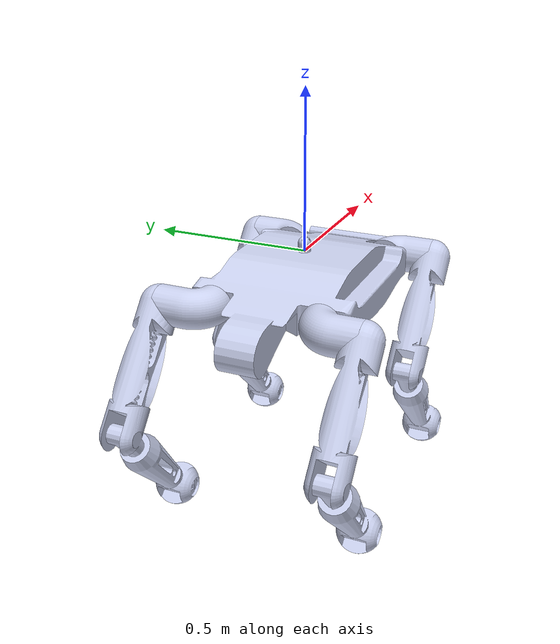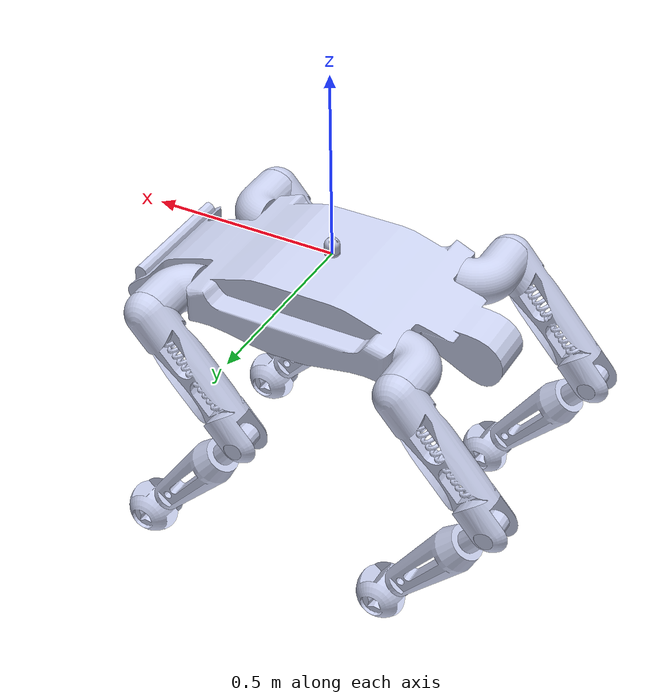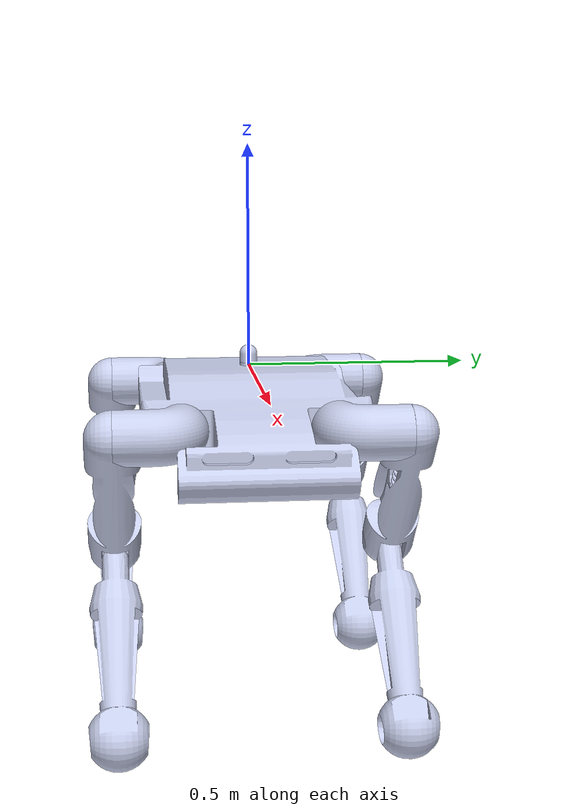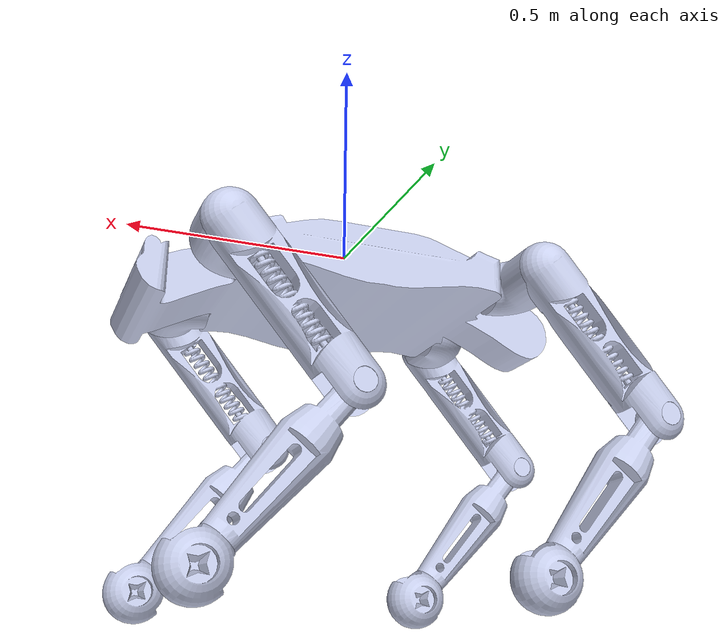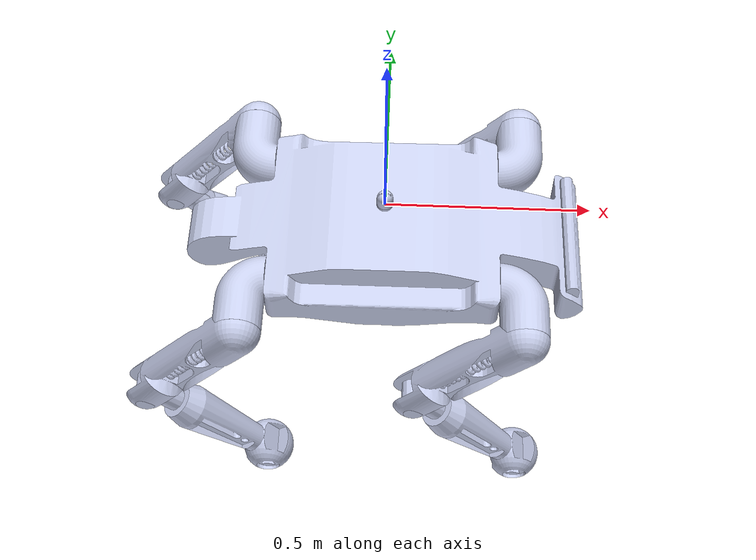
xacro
<?xml version="1.0" ?>
<robot
  name="bruno" xmlns:xacro="http://ros.org/wiki/xacro">
  <link name="dummy_link"></link>
  <link
    name="base_link" >
    <inertial>
      <origin
        xyz="0.0226398495790573 -3.89308433540458E-05 -0.0917853865936327"
        rpy="0 0 0" />
      <mass
        value="40.9811213814977" />
      <inertia
        ixx="0.705590024772154"
        ixy="-0.000426844603876142"
        ixz="0.0538798871665836"
        iyy="2.10623867387607"
        iyz="8.22509666239292E-05"
        izz="2.66085772664499" />
    </inertial>
    <visual>
      <origin
        xyz="0 0 0"
        rpy="0 0 0" />
      <geometry>
        <mesh
          filename="package://bruno/meshes/base_link.STL" />
      </geometry>
      <material
        name="">
        <color
          rgba="0.792156862745098 0.819607843137255 0.933333333333333 1" />
      </material>
    </visual>
    <collision>
      <origin
        xyz="0 0 0"
        rpy="0 0 0" />
      <geometry>
        <mesh
          filename="package://bruno/meshes/base_link.STL" />
      </geometry>
    </collision>
  </link>
  <joint name="dummy_joint" type="fixed">
    <origin rpy="0 0 0" xyz="0 0 0" />
    <parent link="dummy_link"/>
    <child link="base_link"/>
	</joint>
  <link
    name="fr_thigh_link">
    <inertial>
      <origin
        xyz="-0.0632805867054035 2.1285884999056E-09 0.0305615244081003"
        rpy="0 0 0" />
      <mass
        value="2.03276391085227" />
      <inertia
        ixx="0.00362430847918608"
        ixy="-6.93144774285455E-10"
        ixz="0.000758555151467763"
        iyy="0.00831656981525165"
        iyz="2.36222199008423E-10"
        izz="0.00835118856419136" />
    </inertial>
    <visual>
      <origin
        xyz="0 0 0"
        rpy="0 0 0" />
      <geometry>
        <mesh
          filename="package://bruno/meshes/fr_thigh_link.STL" />
      </geometry>
      <material
        name="">
        <color
          rgba="0.792156862745098 0.819607843137255 0.933333333333333 1" />
      </material>
    </visual>
    <collision>
      <origin
        xyz="0 0 0"
        rpy="0 0 0" />
      <geometry>
        <mesh
          filename="package://bruno/meshes/fr_thigh_link.STL" />
      </geometry>
    </collision>
  </link>
  <joint
    name="fr_thigh_joint"
    type="revolute">
    <origin
      xyz="0.308523286801734 -0.170000173902694 -0.0943774201689784"
      rpy="1.5707963267949 0 1.5707963267949" />
    <parent
      link="base_link" />
    <child
      link="fr_thigh_link" />
    <axis
      xyz="0 0 1" />
    <limit
      lower="0"
      upper="0"
      effort="0"
      velocity="0" />
  </joint>
  <link
    name="fr_leg_link">
    <inertial>
      <origin
        xyz="0.12019790111426 -0.143259479284328 0.0203781049178077"
        rpy="0 0 0" />
      <mass
        value="2.21745458605018" />
      <inertia
        ixx="0.0266716191184848"
        ixy="0.0187884251532103"
        ixz="-0.00116911776317338"
        iyy="0.0200463346888596"
        iyz="0.00139351727422659"
        izz="0.0434443595227279" />
    </inertial>
    <visual>
      <origin
        xyz="0 0 0"
        rpy="0 0 0" />
      <geometry>
        <mesh
          filename="package://bruno/meshes/fr_leg_link.STL" />
      </geometry>
      <material
        name="">
        <color
          rgba="0.792156862745098 0.819607843137255 0.933333333333333 1" />
      </material>
    </visual>
    <collision>
      <origin
        xyz="0 0 0"
        rpy="0 0 0" />
      <geometry>
        <mesh
          filename="package://bruno/meshes/fr_leg_link.STL" />
      </geometry>
    </collision>
  </link>
  <joint
    name="fr_leg_joint"
    type="revolute">
    <origin
      xyz="-0.170183232756006 0 0.0354382464541242"
      rpy="0 1.5707963267949 0" />
    <parent
      link="fr_thigh_link" />
    <child
      link="fr_leg_link" />
    <axis
      xyz="0 0 -1" />
    <limit
      lower="0"
      upper="0"
      effort="0"
      velocity="0" />
  </joint>
  <link
    name="fr_shin_link">
    <inertial>
      <origin
        xyz="0.179968891055547 0.215776713253008 0.000215390278360372"
        rpy="0 0 0" />
      <mass
        value="3.17121221400824" />
      <inertia
        ixx="0.0519451453620737"
        ixy="-0.0399304170181899"
        ixz="-8.01801154788949E-05"
        iyy="0.0379833163092041"
        iyz="-9.46092673541023E-05"
        izz="0.0858857153551078" />
    </inertial>
    <visual>
      <origin
        xyz="0 0 0"
        rpy="0 0 0" />
      <geometry>
        <mesh
          filename="package://bruno/meshes/fr_shin_link.STL" />
      </geometry>
      <material
        name="">
        <color
          rgba="0.792156862745098 0.819607843137255 0.933333333333333 1" />
      </material>
    </visual>
    <collision>
      <origin
        xyz="0 0 0"
        rpy="0 0 0" />
      <geometry>
        <mesh
          filename="package://bruno/meshes/fr_shin_link.STL" />
      </geometry>
    </collision>
  </link>
  <joint
    name="fr_shin_joint"
    type="revolute">
    <origin
      xyz="0.264190523301229 -0.297986287064543 0.0249999734100426"
      rpy="0 0 3.14159265358979" />
    <parent
      link="fr_leg_link" />
    <child
      link="fr_shin_link" />
    <axis
      xyz="0 0 -1" />
    <limit
      lower="0"
      upper="0"
      effort="0"
      velocity="0" />
  </joint>
  <link
    name="fl_thigh_link">
    <inertial>
      <origin
        xyz="0.0632805867054036 -2.12868082882789E-09 0.0305615244081003"
        rpy="0 0 0" />
      <mass
        value="2.03276391085227" />
      <inertia
        ixx="0.00362430847918608"
        ixy="-6.93137931212592E-10"
        ixz="-0.000758555151467763"
        iyy="0.00831656981525165"
        iyz="-2.36221092593191E-10"
        izz="0.00835118856419137" />
    </inertial>
    <visual>
      <origin
        xyz="0 0 0"
        rpy="0 0 0" />
      <geometry>
        <mesh
          filename="package://bruno/meshes/fl_thigh_link.STL" />
      </geometry>
      <material
        name="">
        <color
          rgba="0.792156862745098 0.819607843137255 0.933333333333333 1" />
      </material>
    </visual>
    <collision>
      <origin
        xyz="0 0 0"
        rpy="0 0 0" />
      <geometry>
        <mesh
          filename="package://bruno/meshes/fl_thigh_link.STL" />
      </geometry>
    </collision>
  </link>
  <joint
    name="fl_thigh_joint"
    type="revolute">
    <origin
      xyz="0.308523286801734 0.170000173902694 -0.0943774201689784"
      rpy="1.5707963267949 0 1.5707963267949" />
    <parent
      link="base_link" />
    <child
      link="fl_thigh_link" />
    <axis
      xyz="0 0 1" />
    <limit
      lower="0"
      upper="0"
      effort="0"
      velocity="0" />
  </joint>
  <link
    name="fl_leg_link">
    <inertial>
      <origin
        xyz="0.120210884605648 0.143248557446126 0.0203781358138403"
        rpy="0 0 0" />
      <mass
        value="2.21746271008323" />
      <inertia
        ixx="0.0266721257111891"
        ixy="-0.0187883416352741"
        ixz="-0.00116937614015478"
        iyy="0.0200458538368986"
        iyz="-0.0013933496117703"
        izz="0.0434443467625671" />
    </inertial>
    <visual>
      <origin
        xyz="0 0 0"
        rpy="0 0 0" />
      <geometry>
        <mesh
          filename="package://bruno/meshes/fl_leg_link.STL" />
      </geometry>
      <material
        name="">
        <color
          rgba="0.792156862745098 0.819607843137255 0.933333333333333 1" />
      </material>
    </visual>
    <collision>
      <origin
        xyz="0 0 0"
        rpy="0 0 0" />
      <geometry>
        <mesh
          filename="package://bruno/meshes/fl_leg_link.STL" />
      </geometry>
    </collision>
  </link>
  <joint
    name="fl_leg_joint"
    type="revolute">
    <origin
      xyz="0.170183232756006 0 0.0354382464541242"
      rpy="3.14159265358979 1.5707963267949 0" />
    <parent
      link="fl_thigh_link" />
    <child
      link="fl_leg_link" />
    <axis
      xyz="0 0 -1" />
    <limit
      lower="0"
      upper="0"
      effort="0"
      velocity="0" />
  </joint>
  <link
    name="fl_shin_link">
    <inertial>
      <origin
        xyz="0.179968891055547 -0.215776713253008 -0.000215390278360372"
        rpy="0 0 0" />
      <mass
        value="3.17121221400824" />
      <inertia
        ixx="0.0519451453620737"
        ixy="0.0399304170181898"
        ixz="8.01801154788981E-05"
        iyy="0.0379833163092041"
        iyz="-9.46092673541049E-05"
        izz="0.0858857153551077" />
    </inertial>
    <visual>
      <origin
        xyz="0 0 0"
        rpy="0 0 0" />
      <geometry>
        <mesh
          filename="package://bruno/meshes/fl_shin_link.STL" />
      </geometry>
      <material
        name="">
        <color
          rgba="0.792156862745098 0.819607843137255 0.933333333333333 1" />
      </material>
    </visual>
    <collision>
      <origin
        xyz="0 0 0"
        rpy="0 0 0" />
      <geometry>
        <mesh
          filename="package://bruno/meshes/fl_shin_link.STL" />
      </geometry>
    </collision>
  </link>
  <joint
    name="fl_shin_joint"
    type="revolute">
    <origin
      xyz="0.264190523301229 0.297986287064544 0.0250000265899572"
      rpy="0 0 3.14159265358979" />
    <parent
      link="fl_leg_link" />
    <child
      link="fl_shin_link" />
    <axis
      xyz="0 0 1" />
    <limit
      lower="0"
      upper="0"
      effort="0"
      velocity="0" />
  </joint>
  <link
    name="br_thigh_link">
    <inertial>
      <origin
        xyz="-0.0632805867054036 2.12858870807242E-09 0.0305615244081001"
        rpy="0 0 0" />
      <mass
        value="2.03276391085227" />
      <inertia
        ixx="0.00362430847918608"
        ixy="-6.93144759042335E-10"
        ixz="0.000758555151467761"
        iyy="0.00831656981525165"
        iyz="2.36222195879922E-10"
        izz="0.00835118856419136" />
    </inertial>
    <visual>
      <origin
        xyz="0 0 0"
        rpy="0 0 0" />
      <geometry>
        <mesh
          filename="package://bruno/meshes/br_thigh_link.STL" />
      </geometry>
      <material
        name="">
        <color
          rgba="0.792156862745098 0.819607843137255 0.933333333333333 1" />
      </material>
    </visual>
    <collision>
      <origin
        xyz="0 0 0"
        rpy="0 0 0" />
      <geometry>
        <mesh
          filename="package://bruno/meshes/br_thigh_link.STL" />
      </geometry>
    </collision>
  </link>
  <joint
    name="br_thigh_joint"
    type="revolute">
    <origin
      xyz="-0.308523286801734 -0.170000173902694 -0.0943774201689784"
      rpy="-1.5707963267949 0 1.5707963267949" />
    <parent
      link="base_link" />
    <child
      link="br_thigh_link" />
    <axis
      xyz="0 0 1" />
    <limit
      lower="0"
      upper="0"
      effort="0"
      velocity="0" />
  </joint>
  <link
    name="br_leg_link">
    <inertial>
      <origin
        xyz="-0.120197901114102 0.143259479284322 0.0203781049177207"
        rpy="0 0 0" />
      <mass
        value="2.21745458603243" />
      <inertia
        ixx="0.0266716191184828"
        ixy="0.0187884251532099"
        ixz="0.00116911776316971"
        iyy="0.020046334688851"
        iyz="-0.00139351727422628"
        izz="0.0434443595227212" />
    </inertial>
    <visual>
      <origin
        xyz="0 0 0"
        rpy="0 0 0" />
      <geometry>
        <mesh
          filename="package://bruno/meshes/br_leg_link.STL" />
      </geometry>
      <material
        name="">
        <color
          rgba="0.792156862745098 0.819607843137255 0.933333333333333 1" />
      </material>
    </visual>
    <collision>
      <origin
        xyz="0 0 0"
        rpy="0 0 0" />
      <geometry>
        <mesh
          filename="package://bruno/meshes/br_leg_link.STL" />
      </geometry>
    </collision>
  </link>
  <joint
    name="br_leg_joint"
    type="revolute">
    <origin
      xyz="-0.170183232756006 0 0.0354382464541242"
      rpy="0 1.5707963267949 0" />
    <parent
      link="br_thigh_link" />
    <child
      link="br_leg_link" />
    <axis
      xyz="0 0 -1" />
    <limit
      lower="0"
      upper="0"
      effort="0"
      velocity="0" />
  </joint>
  <link
    name="br_shin_link">
    <inertial>
      <origin
        xyz="0.179968891055545 0.215776713253009 0.000215390278360483"
        rpy="0 0 0" />
      <mass
        value="3.17121221400824" />
      <inertia
        ixx="0.0519451453620743"
        ixy="-0.0399304170181898"
        ixz="-8.01801154789139E-05"
        iyy="0.0379833163092035"
        iyz="-9.46092673541252E-05"
        izz="0.0858857153551078" />
    </inertial>
    <visual>
      <origin
        xyz="0 0 0"
        rpy="0 0 0" />
      <geometry>
        <mesh
          filename="package://bruno/meshes/br_shin_link.STL" />
      </geometry>
      <material
        name="">
        <color
          rgba="0.792156862745098 0.819607843137255 0.933333333333333 1" />
      </material>
    </visual>
    <collision>
      <origin
        xyz="0 0 0"
        rpy="0 0 0" />
      <geometry>
        <mesh
          filename="package://bruno/meshes/br_shin_link.STL" />
      </geometry>
    </collision>
  </link>
  <joint
    name="br_shin_joint"
    type="revolute">
    <origin
      xyz="-0.264190523301232 0.297986287064542 0.0249999734100428"
      rpy="0 0 0" />
    <parent
      link="br_leg_link" />
    <child
      link="br_shin_link" />
    <axis
      xyz="0 0 -1" />
    <limit
      lower="0"
      upper="0"
      effort="0"
      velocity="0" />
  </joint>
  <link
    name="bl_thigh_link">
    <inertial>
      <origin
        xyz="0.0632805867054036 -2.12868118965037E-09 0.0305615244081003"
        rpy="0 0 0" />
      <mass
        value="2.03276391085227" />
      <inertia
        ixx="0.00362430847918608"
        ixy="-6.93137903500395E-10"
        ixz="-0.000758555151467762"
        iyy="0.00831656981525164"
        iyz="-2.36221087771152E-10"
        izz="0.00835118856419136" />
    </inertial>
    <visual>
      <origin
        xyz="0 0 0"
        rpy="0 0 0" />
      <geometry>
        <mesh
          filename="package://bruno/meshes/bl_thigh_link.STL" />
      </geometry>
      <material
        name="">
        <color
          rgba="0.792156862745098 0.819607843137255 0.933333333333333 1" />
      </material>
    </visual>
    <collision>
      <origin
        xyz="0 0 0"
        rpy="0 0 0" />
      <geometry>
        <mesh
          filename="package://bruno/meshes/bl_thigh_link.STL" />
      </geometry>
    </collision>
  </link>
  <joint
    name="bl_thigh_joint"
    type="revolute">
    <origin
      xyz="-0.308523286801734 0.170000173902694 -0.0943774201689784"
      rpy="-1.5707963267949 0 1.5707963267949" />
    <parent
      link="base_link" />
    <child
      link="bl_thigh_link" />
    <axis
      xyz="0 0 1" />
    <limit
      lower="0"
      upper="0"
      effort="0"
      velocity="0" />
  </joint>
  <link
    name="bl_leg_link">
    <inertial>
      <origin
        xyz="-0.120210884605528 -0.143248557446073 0.0203781358136048"
        rpy="0 0 0" />
      <mass
        value="2.21746271005845" />
      <inertia
        ixx="0.0266721257111783"
        ixy="-0.0187883416352729"
        ixz="0.00116937614014934"
        iyy="0.020045853836886"
        iyz="0.00139334961176758"
        izz="0.0434443467625641" />
    </inertial>
    <visual>
      <origin
        xyz="0 0 0"
        rpy="0 0 0" />
      <geometry>
        <mesh
          filename="package://bruno/meshes/bl_leg_link.STL" />
      </geometry>
      <material
        name="">
        <color
          rgba="0.792156862745098 0.819607843137255 0.933333333333333 1" />
      </material>
    </visual>
    <collision>
      <origin
        xyz="0 0 0"
        rpy="0 0 0" />
      <geometry>
        <mesh
          filename="package://bruno/meshes/bl_leg_link.STL" />
      </geometry>
    </collision>
  </link>
  <joint
    name="bl_leg_joint"
    type="revolute">
    <origin
      xyz="0.170183232756006 0 0.0354382464541243"
      rpy="3.14159265358979 1.5707963267949 0" />
    <parent
      link="bl_thigh_link" />
    <child
      link="bl_leg_link" />
    <axis
      xyz="0 0 -1" />
    <limit
      lower="0"
      upper="0"
      effort="0"
      velocity="0" />
  </joint>
  <link
    name="bl_shin_link">
    <inertial>
      <origin
        xyz="0.179968891055545 -0.215776713253009 -0.0002153902783604"
        rpy="0 0 0" />
      <mass
        value="3.17121221400823" />
      <inertia
        ixx="0.0519451453620743"
        ixy="0.0399304170181898"
        ixz="8.01801154789103E-05"
        iyy="0.0379833163092035"
        iyz="-9.46092673541166E-05"
        izz="0.0858857153551078" />
    </inertial>
    <visual>
      <origin
        xyz="0 0 0"
        rpy="0 0 0" />
      <geometry>
        <mesh
          filename="package://bruno/meshes/bl_shin_link.STL" />
      </geometry>
      <material
        name="">
        <color
          rgba="0.792156862745098 0.819607843137255 0.933333333333333 1" />
      </material>
    </visual>
    <collision>
      <origin
        xyz="0 0 0"
        rpy="0 0 0" />
      <geometry>
        <mesh
          filename="package://bruno/meshes/bl_shin_link.STL" />
      </geometry>
    </collision>
  </link>
  <joint
    name="bl_shin_joint"
    type="revolute">
    <origin
      xyz="-0.264190523301232 -0.297986287064542 0.0250000265899572"
      rpy="0 0 0" />
    <parent
      link="bl_leg_link" />
    <child
      link="bl_shin_link" />
    <axis
      xyz="0 0 1" />
    <limit
      lower="0"
      upper="0"
      effort="0"
      velocity="0" />
  </joint>
  <link
    name="lidar_link">
    <inertial>
      <origin
        xyz="1.72571862754323E-05 3.32564935764668E-05 0.00622668080215022"
        rpy="0 0 0" />
      <mass
        value="0.0392526006384488" />
      <inertia
        ixx="7.59894863075948E-06"
        ixy="2.26302148135042E-11"
        ixz="-6.73333402354733E-09"
        iyy="7.57957258862203E-06"
        iyz="-1.11660880756736E-08"
        izz="7.4337348241905E-06" />
    </inertial>
    <visual>
      <origin
        xyz="0 0 0"
        rpy="0 0 0" />
      <geometry>
        <mesh
          filename="package://bruno/meshes/lidar_link.STL" />
      </geometry>
      <material
        name="">
        <color
          rgba="0.792156862745098 0.819607843137255 0.933333333333333 1" />
      </material>
    </visual>
    <collision>
      <origin
        xyz="0 0 0"
        rpy="0 0 0" />
      <geometry>
        <mesh
          filename="package://bruno/meshes/lidar_link.STL" />
      </geometry>
    </collision>
  </link>
  <joint
    name="lidar_joint"
    type="fixed">
    <origin
      xyz="0 0 0.0165082867155349"
      rpy="0 0 0" />
    <parent
      link="base_link" />
    <child
      link="lidar_link" />
    <axis
      xyz="0 0 0" />
  </joint>

  <!-- CONTROLLERS FOR LEGS -->

  <ros2_control name="GazeboSystem" type="system">
 	<hardware>
     <plugin>gazebo_ros2_control/GazeboSystem</plugin>
 	</hardware>

 	<!-- Position Controllers-->
  <joint name="bl_thigh_joint">
    <command_interface name="position">
		    <param name="min">-3.14</param>
		    <param name="max">3.14</param>
		</command_interface>
	  <state_interface name="position"/>
	  <state_interface name="velocity"/>
  </joint>

  <joint name="br_thigh_joint">
    <command_interface name="position">
		    <param name="min">-3.14</param>
		    <param name="max">3.14</param>
		</command_interface>
	  <state_interface name="position"/>
	  <state_interface name="velocity"/>
  </joint>

  <joint name="fl_thigh_joint">
    <command_interface name="position">
		    <param name="min">-3.14</param>
		    <param name="max">3.14</param>
		</command_interface>
	  <state_interface name="position"/>
	  <state_interface name="velocity"/>
  </joint>

  <joint name="fr_thigh_joint">
    <command_interface name="position">
		    <param name="min">-3.14</param>
		    <param name="max">3.14</param>
		</command_interface>
	  <state_interface name="position"/>
	  <state_interface name="velocity"/>
  </joint>

  <joint name="bl_leg_joint">
    <command_interface name="position">
		    <param name="min">-3.14</param>
		    <param name="max">3.14</param>
		</command_interface>
	  <state_interface name="position"/>
	  <state_interface name="velocity"/>
  </joint>

  <joint name="br_leg_joint">
    <command_interface name="position">
		    <param name="min">-3.14</param>
		    <param name="max">3.14</param>
		</command_interface>
	  <state_interface name="position"/>
	  <state_interface name="velocity"/>
  </joint>

  <joint name="fl_leg_joint">
    <command_interface name="position">
		    <param name="min">-3.14</param>
		    <param name="max">3.14</param>
		</command_interface>
	  <state_interface name="position"/>
	  <state_interface name="velocity"/>
  </joint>

  <joint name="fr_leg_joint">
    <command_interface name="position">
		    <param name="min">-3.14</param>
		    <param name="max">3.14</param>
		</command_interface>
	  <state_interface name="position"/>
	  <state_interface name="velocity"/>
  </joint>

  <joint name="bl_shin_joint">
    <command_interface name="position">
		    <param name="min">-3.14</param>
		    <param name="max">3.14</param>
		</command_interface>
	  <state_interface name="position"/>
	  <state_interface name="velocity"/>
  </joint>

  <joint name="br_shin_joint">
    <command_interface name="position">
		    <param name="min">-3.14</param>
		    <param name="max">3.14</param>
		</command_interface>
	  <state_interface name="position"/>
	  <state_interface name="velocity"/>
  </joint>

  <joint name="fl_shin_joint">
    <command_interface name="position">
		    <param name="min">-3.14</param>
		    <param name="max">3.14</param>
		</command_interface>
	  <state_interface name="position"/>
	  <state_interface name="velocity"/>
  </joint>

  <joint name="fr_shin_joint">
    <command_interface name="position">
		    <param name="min">-3.14</param>
		    <param name="max">3.14</param>
		</command_interface>
	  <state_interface name="position"/>
	  <state_interface name="velocity"/>
  </joint>

  </ros2_control>

  <gazebo>
    <plugin filename="libgazebo_ros2_control.so" name="gazebo_ros2_control">
        <parameters>$(find bruno)/config/control.yaml</parameters>
    </plugin>
	</gazebo>

  <!-- Lidar Plugin-->
  <gazebo reference="lidar_link">
  <sensor name="lidar" type="ray">
    <pose>0.0 0.0 0.0 0 0 0</pose>
    <always_on>true</always_on>
    <visualize>true</visualize>
    <update_rate>5</update_rate>
    <ray>
      <scan>
        <horizontal>
          <samples>360</samples>
          <resolution>1.00000</resolution>
          <min_angle>0.000000</min_angle>
          <max_angle>6.280000</max_angle>
        </horizontal>
      </scan>
      <range>
        <min>0.120000</min>
        <max>3.5</max>
        <resolution>0.015000</resolution>
      </range>
      <noise>
        <type>gaussian</type>
        <mean>0.0</mean>
        <stddev>0.01</stddev>
      </noise>
    </ray>
    <plugin name="scan" filename="libgazebo_ros_ray_sensor.so">
      <ros>
        <remapping>~/out:=scan_4</remapping>
      </ros>
      <output_type>sensor_msgs/LaserScan</output_type>
      <frame_name>lidar_link</frame_name>
    </plugin>
  </sensor>
  </gazebo>

  <!-- IMU Plugin-->
  <gazebo reference="base_link">
  <gravity>true</gravity>
  <sensor name="imu_sensor" type="imu">
    <always_on>true</always_on>
    <update_rate>100</update_rate>
    <visualize>true</visualize>
    <topic>__default_topic__</topic>
    <plugin filename="libgazebo_ros_imu_sensor.so" name="imu_plugin">
      <topicName>imu/absolute</topicName>
      <bodyName>base_link</bodyName>
      <updateRateHZ>10.0</updateRateHZ>
      <gaussianNoise>0.0</gaussianNoise>
      <xyzOffset>0 0 0</xyzOffset>
      <rpyOffset>0 0 0</rpyOffset>
      <frameName>base_link</frameName>
      <initialOrientationAsReference>false</initialOrientationAsReference>
    </plugin>
    <pose>0 0 0 0 0 0</pose>
  </sensor>
  </gazebo>

  <gazebo>
  <plugin filename="libodometry_plugin.so" name="odometry_plugin">
    <!-- Name of the link for which the odometry is required -->
    <frame>base_link</frame>
    <!-- Any arbitray name for the world frame -->
    <world_frame>fixed_world</world_frame>
  </plugin>
  </gazebo>

  <!--Body coloring-->
  <xacro:macro name="body_color">
  <visual>
    <material>
      <!-- Set ambient, diffuse, and specular values for dark blue color -->
      <ambient>0 0 0.5 1</ambient>
      <diffuse>0 0 0.5 1</diffuse>
      <specular>0.1 0.1 0.1 1</specular>
      <emissive>0 0 0 0</emissive>
    </material>
  </visual>
  </xacro:macro>
  <xacro:macro name="lidar_color">
    <visual>
        <material>
            <!-- Set ambient, diffuse, and specular values for matte black color -->
            <ambient>0.05 0.05 0.05 1</ambient>
            <diffuse>0.05 0.05 0.05 1</diffuse>
            <specular>0.01 0.01 0.01 1</specular>
            <emissive>0 0 0 0</emissive>
        </material>
    </visual>
  </xacro:macro>
  <xacro:macro name="leg_color">
    <visual>
    <material>
        <!-- Set ambient, diffuse, and specular values to achieve grey color -->
        <ambient>0.5 0.5 0.5 1</ambient>
        <diffuse>0.5 0.5 0.5 1</diffuse>
        <specular>0.1 0.1 0.1 1</specular>
        <emissive>0 0 0 0</emissive>
    </material>
    </visual>
  </xacro:macro>
  <xacro:macro name="beige">
  <visual>
    <material>
      <!-- Set ambient, diffuse, and specular values for beige color -->
      <ambient>0.76 0.7 0.5 1</ambient>
      <diffuse>0.76 0.7 0.5 1</diffuse>
      <specular>0.1 0.1 0.1 1</specular>
      <emissive>0 0 0 0</emissive>
    </material>
  </visual>
  </xacro:macro>

  <gazebo reference="base_link">
    <xacro:body_color />
  </gazebo>
  <gazebo reference="bl_thigh_link">
    <xacro:beige />
  </gazebo>
  <gazebo reference="bl_leg_link">
    <xacro:beige />
  </gazebo>
  <gazebo reference="bl_shin_link">
    <xacro:leg_color />
  </gazebo>
  <gazebo reference="br_thigh_link">
    <xacro:beige />
  </gazebo>
  <gazebo reference="br_leg_link">
    <xacro:beige />
  </gazebo>
  <gazebo reference="br_shin_link">
    <xacro:leg_color />
  </gazebo>
  <gazebo reference="fr_thigh_link">
    <xacro:beige />
  </gazebo>
  <gazebo reference="fr_leg_link">
    <xacro:beige />
  </gazebo>
  <gazebo reference="fr_shin_link">
    <xacro:leg_color />
  </gazebo>
  <gazebo reference="fl_thigh_link">
    <xacro:beige />
  </gazebo>\
  <gazebo reference="fl_leg_link">
    <xacro:beige />
  </gazebo>
  <gazebo reference="fl_shin_link">
    <xacro:leg_color />
  </gazebo>
  <gazebo reference="lidar_link">
    <xacro:lidar_color />
  </gazebo>

</robot>
